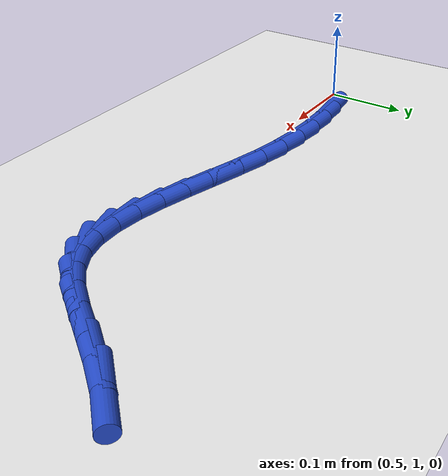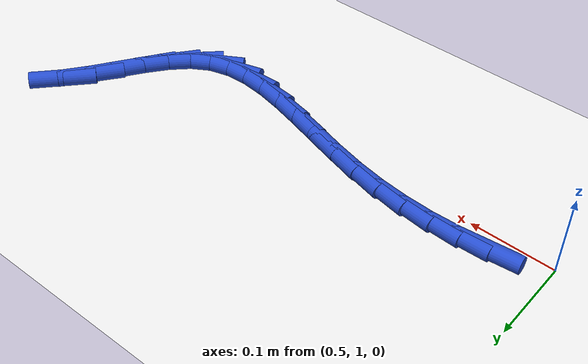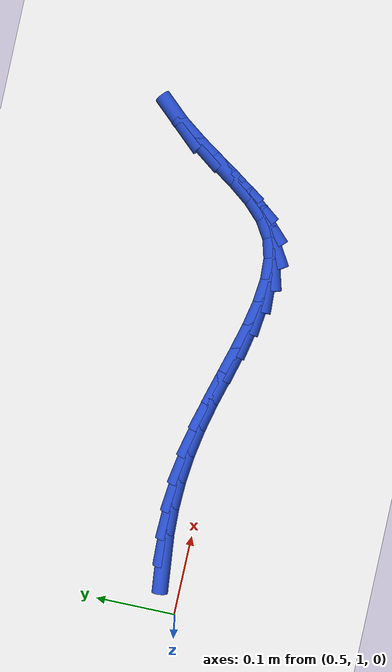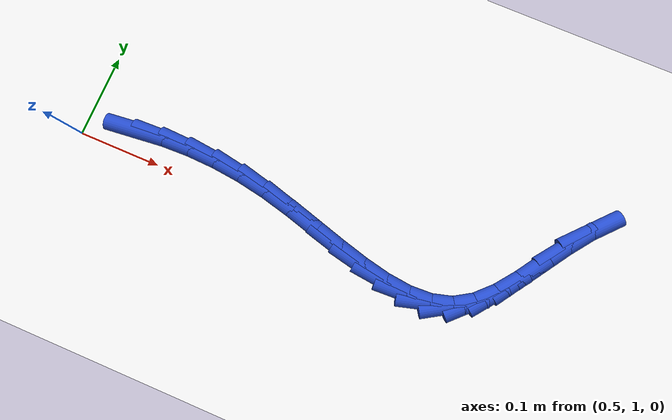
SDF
<sdf version="1.6">
 <world name="default">
  <model name="ground_plane">
   <static>1</static>
   <link name="link">
    <collision name="collision">
     <geometry><plane><normal>0 0 1</normal><size>100 100</size></plane></geometry>
     <surface><friction><ode><mu>100</mu><mu2>50</mu2></ode></friction></surface>
    </collision>
    <visual name="visual">
     <cast_shadows>0</cast_shadows>
     <geometry><plane><normal>0 0 1</normal><size>100 100</size></plane></geometry>
     <material>
      <script><uri>file://media/materials/scripts/gazebo.material</uri><name>Gazebo/WhiteGlow</name></script>
     </material>
    </visual>
   </link>
  </model>
  <model name="line">
   <link name="link_40">
    <pose>0.5652857838571095 1.028377912570792 0.01 0 1.57 0.10294541559105572</pose>
    <collision name="collision">
     <geometry><cylinder><radius>0.01</radius><length>0.08</length></cylinder></geometry>
    </collision>
    <visual name="visual">
     <material>
      <script><name>Gazebo/Blue</name><uri>file://media/materials/scripts/gazebo.material</uri></script>
     </material>
     <geometry><cylinder><radius>0.01</radius><length>0.08</length></cylinder></geometry>
    </visual>
   </link>
   <link name="link_41">
    <pose>0.5978506829048502 1.0317422127224363 0.01 0 1.57 0.03210324137186535</pose>
    <collision name="collision">
     <geometry><cylinder><radius>0.01</radius><length>0.08</length></cylinder></geometry>
    </collision>
    <visual name="visual">
     <material>
      <script><name>Gazebo/Blue</name><uri>file://media/materials/scripts/gazebo.material</uri></script>
     </material>
     <geometry><cylinder><radius>0.01</radius><length>0.08</length></cylinder></geometry>
    </visual>
   </link>
   <link name="link_42">
    <pose>0.631131044794244 1.032810987404524 0.01 0 1.57 -0.0375032481259943</pose>
    <collision name="collision">
     <geometry><cylinder><radius>0.01</radius><length>0.08</length></cylinder></geometry>
    </collision>
    <visual name="visual">
     <material>
      <script><name>Gazebo/Blue</name><uri>file://media/materials/scripts/gazebo.material</uri></script>
     </material>
     <geometry><cylinder><radius>0.01</radius><length>0.08</length></cylinder></geometry>
    </visual>
   </link>
   <link name="link_43">
    <pose>0.6649799796055315 1.0315409469130403 0.01 0 1.57 -0.10616713697954354</pose>
    <collision name="collision">
     <geometry><cylinder><radius>0.01</radius><length>0.08</length></cylinder></geometry>
    </collision>
    <visual name="visual">
     <material>
      <script><name>Gazebo/Blue</name><uri>file://media/materials/scripts/gazebo.material</uri></script>
     </material>
     <geometry><cylinder><radius>0.01</radius><length>0.08</length></cylinder></geometry>
    </visual>
   </link>
   <link name="link_44">
    <pose>0.6992505974189523 1.0278888015439693 0.01 0 1.57 -0.17414663860047047</pose>
    <collision name="collision">
     <geometry><cylinder><radius>0.01</radius><length>0.08</length></cylinder></geometry>
    </collision>
    <visual name="visual">
     <material>
      <script><name>Gazebo/Blue</name><uri>file://media/materials/scripts/gazebo.material</uri></script>
     </material>
     <geometry><cylinder><radius>0.01</radius><length>0.08</length></cylinder></geometry>
    </visual>
   </link>
   <link name="link_45">
    <pose>0.7337960062275458 1.0218112722978014 0.01 0 1.57 -0.23589481009776447</pose>
    <collision name="collision">
     <geometry><cylinder><radius>0.01</radius><length>0.08</length></cylinder></geometry>
    </collision>
    <visual name="visual">
     <material>
      <script><name>Gazebo/Blue</name><uri>file://media/materials/scripts/gazebo.material</uri></script>
     </material>
     <geometry><cylinder><radius>0.01</radius><length>0.08</length></cylinder></geometry>
    </visual>
   </link>
   <link name="link_46">
    <pose>0.7684259921887606 1.0134872622041928 0.01 0 1.57 -0.272318202959718</pose>
    <collision name="collision">
     <geometry><cylinder><radius>0.01</radius><length>0.08</length></cylinder></geometry>
    </collision>
    <visual name="visual">
     <material>
      <script><name>Gazebo/Blue</name><uri>file://media/materials/scripts/gazebo.material</uri></script>
     </material>
     <geometry><cylinder><radius>0.01</radius><length>0.08</length></cylinder></geometry>
    </visual>
   </link>
   <link name="link_47">
    <pose>0.8027955850263473 1.003889364079919 0.01 0 1.57 -0.2806275232343057</pose>
    <collision name="collision">
     <geometry><cylinder><radius>0.01</radius><length>0.08</length></cylinder></geometry>
    </collision>
    <visual name="visual">
     <material>
      <script><name>Gazebo/Blue</name><uri>file://media/materials/scripts/gazebo.material</uri></script>
     </material>
     <geometry><cylinder><radius>0.01</radius><length>0.08</length></cylinder></geometry>
    </visual>
   </link>
   <link name="link_48">
    <pose>0.8365252720707271 0.9941673261862982 0.01 0 1.57 -0.25985133850064984</pose>
    <collision name="collision">
     <geometry><cylinder><radius>0.01</radius><length>0.08</length></cylinder></geometry>
    </collision>
    <visual name="visual">
     <material>
      <script><name>Gazebo/Blue</name><uri>file://media/materials/scripts/gazebo.material</uri></script>
     </material>
     <geometry><cylinder><radius>0.01</radius><length>0.08</length></cylinder></geometry>
    </visual>
   </link>
   <link name="link_49">
    <pose>0.8692355406523208 0.9854708967846482 0.01 0 1.57 -0.2053304164187187</pose>
    <collision name="collision">
     <geometry><cylinder><radius>0.01</radius><length>0.08</length></cylinder></geometry>
    </collision>
    <visual name="visual">
     <material>
      <script><name>Gazebo/Blue</name><uri>file://media/materials/scripts/gazebo.material</uri></script>
     </material>
     <geometry><cylinder><radius>0.01</radius><length>0.08</length></cylinder></geometry>
    </visual>
   </link>
   <link name="link_50">
    <pose>0.9005468781015507 0.9789498241362876 0.01 0 1.57 -0.10779772045597241</pose>
    <collision name="collision">
     <geometry><cylinder><radius>0.01</radius><length>0.08</length></cylinder></geometry>
    </collision>
    <visual name="visual">
     <material>
      <script><name>Gazebo/Blue</name><uri>file://media/materials/scripts/gazebo.material</uri></script>
     </material>
     <geometry><cylinder><radius>0.01</radius><length>0.08</length></cylinder></geometry>
    </visual>
   </link>
   <link name="link_51">
    <pose>0.9300797717488367 0.9757538565025338 0.01 0 1.57 0.046683448253966336</pose>
    <collision name="collision">
     <geometry><cylinder><radius>0.01</radius><length>0.08</length></cylinder></geometry>
    </collision>
    <visual name="visual">
     <material>
      <script><name>Gazebo/Blue</name><uri>file://media/materials/scripts/gazebo.material</uri></script>
     </material>
     <geometry><cylinder><radius>0.01</radius><length>0.08</length></cylinder></geometry>
    </visual>
   </link>
   <link name="link_52">
    <pose>0.957454708924601 0.9770327421447049 0.01 0 1.57 0.27110347477854857</pose>
    <collision name="collision">
     <geometry><cylinder><radius>0.01</radius><length>0.08</length></cylinder></geometry>
    </collision>
    <visual name="visual">
     <material>
      <script><name>Gazebo/Blue</name><uri>file://media/materials/scripts/gazebo.material</uri></script>
     </material>
     <geometry><cylinder><radius>0.01</radius><length>0.08</length></cylinder></geometry>
    </visual>
   </link>
   <link name="link_53">
    <pose>0.9822921769592645 0.9839362293241193 0.01 0 1.57 0.5515025662225506</pose>
    <collision name="collision">
     <geometry><cylinder><radius>0.01</radius><length>0.08</length></cylinder></geometry>
    </collision>
    <visual name="visual">
     <material>
      <script><name>Gazebo/Blue</name><uri>file://media/materials/scripts/gazebo.material</uri></script>
     </material>
     <geometry><cylinder><radius>0.01</radius><length>0.08</length></cylinder></geometry>
    </visual>
   </link>
   <link name="link_54">
    <pose>1.0042850126942862 0.9974656610290064 0.01 0 1.57 0.7826459290356425</pose>
    <collision name="collision">
     <geometry><cylinder><radius>0.01</radius><length>0.08</length></cylinder></geometry>
    </collision>
    <visual name="visual">
     <material>
      <script><name>Gazebo/Blue</name><uri>file://media/materials/scripts/gazebo.material</uri></script>
     </material>
     <geometry><cylinder><radius>0.01</radius><length>0.08</length></cylinder></geometry>
    </visual>
   </link>
   <link name="link_55">
    <pose>1.0239203119445939 1.01699317476755 0.01 0 1.57 0.9183010963604974</pose>
    <collision name="collision">
     <geometry><cylinder><radius>0.01</radius><length>0.08</length></cylinder></geometry>
    </collision>
    <visual name="visual">
     <material>
      <script><name>Gazebo/Blue</name><uri>file://media/materials/scripts/gazebo.material</uri></script>
     </material>
     <geometry><cylinder><radius>0.01</radius><length>0.08</length></cylinder></geometry>
    </visual>
   </link>
   <link name="link_56">
    <pose>1.0421762126752507 1.040883669113712 0.01 0 1.57 0.9795146821400785</pose>
    <collision name="collision">
     <geometry><cylinder><radius>0.01</radius><length>0.08</length></cylinder></geometry>
    </collision>
    <visual name="visual">
     <material>
      <script><name>Gazebo/Blue</name><uri>file://media/materials/scripts/gazebo.material</uri></script>
     </material>
     <geometry><cylinder><radius>0.01</radius><length>0.08</length></cylinder></geometry>
    </visual>
   </link>
   <link name="link_57">
    <pose>1.0600381276920652 1.067487120291436 0.01 0 1.57 0.9825663960369981</pose>
    <collision name="collision">
     <geometry><cylinder><radius>0.01</radius><length>0.08</length></cylinder></geometry>
    </collision>
    <visual name="visual">
     <material>
      <script><name>Gazebo/Blue</name><uri>file://media/materials/scripts/gazebo.material</uri></script>
     </material>
     <geometry><cylinder><radius>0.01</radius><length>0.08</length></cylinder></geometry>
    </visual>
   </link>
   <link name="link_58">
    <pose>1.078491469800844 1.0951535045246652 0.01 0 1.57 0.9339287388703186</pose>
    <collision name="collision">
     <geometry><cylinder><radius>0.01</radius><length>0.08</length></cylinder></geometry>
    </collision>
    <visual name="visual">
     <material>
      <script><name>Gazebo/Blue</name><uri>file://media/materials/scripts/gazebo.material</uri></script>
     </material>
     <geometry><cylinder><radius>0.01</radius><length>0.08</length></cylinder></geometry>
    </visual>
   </link>
   <link name="link_59">
    <pose>1.0985216518073955 1.1222327980373437 0.01 0 1.57 0.8327909744610715</pose>
    <collision name="collision">
     <geometry><cylinder><radius>0.01</radius><length>0.08</length></cylinder></geometry>
    </collision>
    <visual name="visual">
     <material>
      <script><name>Gazebo/Blue</name><uri>file://media/materials/scripts/gazebo.material</uri></script>
     </material>
     <geometry><cylinder><radius>0.01</radius><length>0.08</length></cylinder></geometry>
    </visual>
   </link>
  </model>
 </world>
</sdf>
